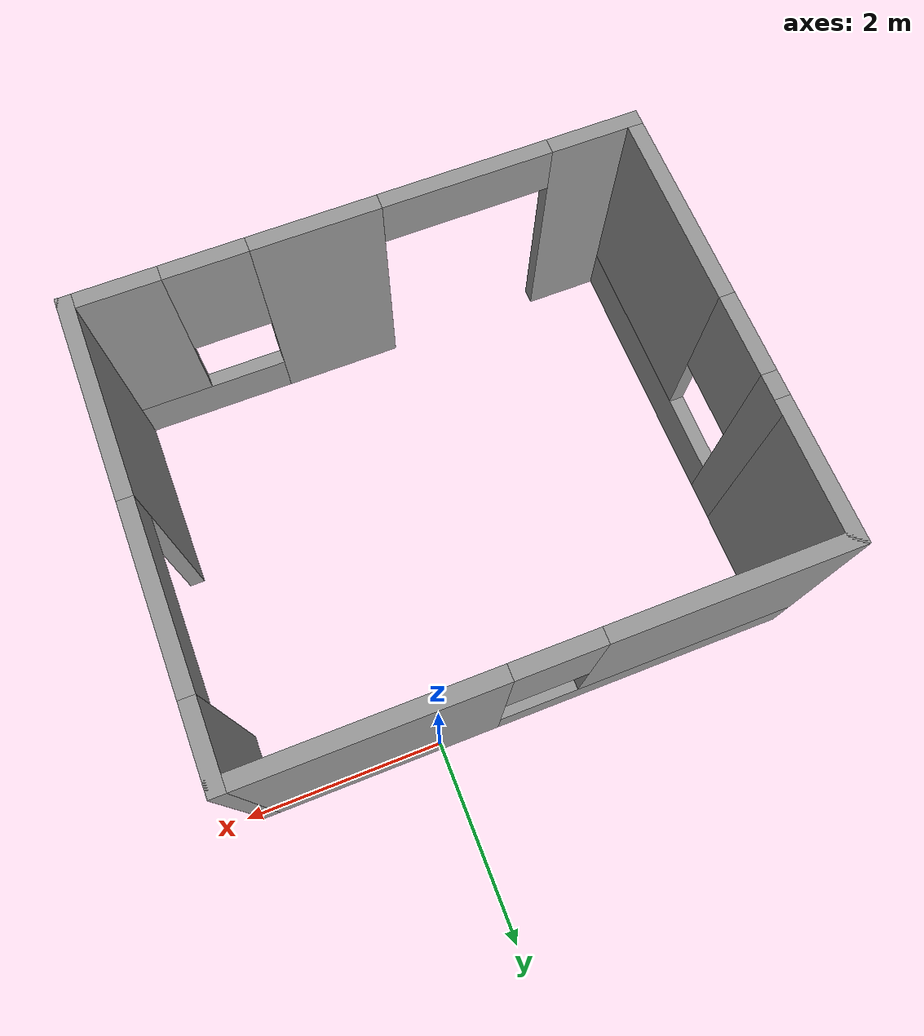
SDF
<?xml version='1.0'?>
<sdf version='1.6'>
  <model name='house2'>
    <pose frame=''>-0.915 -2.195 0 0 -0 0</pose>
    <link name='Wall_0'>
      <pose frame=''>-2.675 -0.625 0 0 -0 -1.5708</pose>
      <visual name='Wall_0_Visual_0'>
        <pose frame=''>-1.42678 0 1.25 0 -0 0</pose>
        <geometry>
          <box>
            <size>0.396432 0.15 2.5</size>
          </box>
        </geometry>
        <material>
          <script>
            <uri>file://media/materials/scripts/gazebo.material</uri>
            <name>Gazebo/Grey</name>
          </script>
          <ambient>1 1 1 1</ambient>
        </material>
        <meta>
          <layer>0</layer>
        </meta>
      </visual>
      <collision name='Wall_0_Collision_0'>
        <geometry>
          <box>
            <size>0.396432 0.15 2.5</size>
          </box>
        </geometry>
        <pose frame=''>-1.42678 0 1.25 0 -0 0</pose>
      </collision>
      <visual name='Wall_0_Visual_1'>
        <pose frame=''>0.198216 0 0.25 0 -0 0</pose>
        <geometry>
          <box>
            <size>2.85357 0.15 0.5</size>
          </box>
        </geometry>
        <material>
          <script>
            <uri>file://media/materials/scripts/gazebo.material</uri>
            <name>Gazebo/Grey</name>
          </script>
          <ambient>1 1 1 1</ambient>
        </material>
        <meta>
          <layer>0</layer>
        </meta>
      </visual>
      <collision name='Wall_0_Collision_1'>
        <geometry>
          <box>
            <size>2.85357 0.15 0.5</size>
          </box>
        </geometry>
        <pose frame=''>0.198216 0 0.25 0 -0 0</pose>
      </collision>
      <visual name='Wall_0_Visual_2'>
        <pose frame=''>0.598216 0 1.5 0 -0 0</pose>
        <geometry>
          <box>
            <size>2.05357 0.15 2</size>
          </box>
        </geometry>
        <material>
          <script>
            <uri>file://media/materials/scripts/gazebo.material</uri>
            <name>Gazebo/Grey</name>
          </script>
          <ambient>1 1 1 1</ambient>
        </material>
        <meta>
          <layer>0</layer>
        </meta>
      </visual>
      <collision name='Wall_0_Collision_2'>
        <geometry>
          <box>
            <size>2.05357 0.15 2</size>
          </box>
        </geometry>
        <pose frame=''>0.598216 0 1.5 0 -0 0</pose>
      </collision>
      <visual name='Wall_0_Visual_3'>
        <pose frame=''>-0.828568 0 1.9 0 -0 0</pose>
        <geometry>
          <box>
            <size>0.8 0.15 1.2</size>
          </box>
        </geometry>
        <material>
          <script>
            <uri>file://media/materials/scripts/gazebo.material</uri>
            <name>Gazebo/Grey</name>
          </script>
          <ambient>1 1 1 1</ambient>
        </material>
        <meta>
          <layer>0</layer>
        </meta>
      </visual>
      <collision name='Wall_0_Collision_3'>
        <geometry>
          <box>
            <size>0.8 0.15 1.2</size>
          </box>
        </geometry>
        <pose frame=''>-0.828568 0 1.9 0 -0 0</pose>
      </collision>
    </link>
    <link name='Wall_1'>
      <pose frame=''>-0 -2.175 0 0 -0 0</pose>
      <visual name='Wall_1_Visual_0'>
        <pose frame=''>-2.30064 0 1.25 0 -0 0</pose>
        <geometry>
          <box>
            <size>0.898712 0.15 2.5</size>
          </box>
        </geometry>
        <material>
          <script>
            <uri>file://media/materials/scripts/gazebo.material</uri>
            <name>Gazebo/Grey</name>
          </script>
          <ambient>1 1 1 1</ambient>
        </material>
        <meta>
          <layer>0</layer>
        </meta>
      </visual>
      <collision name='Wall_1_Collision_0'>
        <geometry>
          <box>
            <size>0.898712 0.15 2.5</size>
          </box>
        </geometry>
        <pose frame=''>-2.30064 0 1.25 0 -0 0</pose>
      </collision>
      <visual name='Wall_1_Visual_1'>
        <pose frame=''>0.412575 0 1.25 0 -0 0</pose>
        <geometry>
          <box>
            <size>1.23812 0.15 2.5</size>
          </box>
        </geometry>
        <material>
          <script>
            <uri>file://media/materials/scripts/gazebo.material</uri>
            <name>Gazebo/Grey</name>
          </script>
          <ambient>1 1 1 1</ambient>
        </material>
        <meta>
          <layer>0</layer>
        </meta>
      </visual>
      <collision name='Wall_1_Collision_1'>
        <geometry>
          <box>
            <size>1.23812 0.15 2.5</size>
          </box>
        </geometry>
        <pose frame=''>0.412575 0 1.25 0 -0 0</pose>
      </collision>
      <visual name='Wall_1_Visual_2'>
        <pose frame=''>1.89082 0 0.25 0 -0 0</pose>
        <geometry>
          <box>
            <size>1.71837 0.15 0.5</size>
          </box>
        </geometry>
        <material>
          <script>
            <uri>file://media/materials/scripts/gazebo.material</uri>
            <name>Gazebo/Grey</name>
          </script>
          <ambient>1 1 1 1</ambient>
        </material>
        <meta>
          <layer>0</layer>
        </meta>
      </visual>
      <collision name='Wall_1_Collision_2'>
        <geometry>
          <box>
            <size>1.71837 0.15 0.5</size>
          </box>
        </geometry>
        <pose frame=''>1.89082 0 0.25 0 -0 0</pose>
      </collision>
      <visual name='Wall_1_Visual_3'>
        <pose frame=''>2.29082 0 1.5 0 -0 0</pose>
        <geometry>
          <box>
            <size>0.918367 0.15 2</size>
          </box>
        </geometry>
        <material>
          <script>
            <uri>file://media/materials/scripts/gazebo.material</uri>
            <name>Gazebo/Grey</name>
          </script>
          <ambient>1 1 1 1</ambient>
        </material>
        <meta>
          <layer>0</layer>
        </meta>
      </visual>
      <collision name='Wall_1_Collision_3'>
        <geometry>
          <box>
            <size>0.918367 0.15 2</size>
          </box>
        </geometry>
        <pose frame=''>2.29082 0 1.5 0 -0 0</pose>
      </collision>
      <visual name='Wall_1_Visual_4'>
        <pose frame=''>1.43163 0 1.9 0 -0 0</pose>
        <geometry>
          <box>
            <size>0.8 0.15 1.2</size>
          </box>
        </geometry>
        <material>
          <script>
            <uri>file://media/materials/scripts/gazebo.material</uri>
            <name>Gazebo/Grey</name>
          </script>
          <ambient>1 1 1 1</ambient>
        </material>
        <meta>
          <layer>0</layer>
        </meta>
      </visual>
      <collision name='Wall_1_Collision_4'>
        <geometry>
          <box>
            <size>0.8 0.15 1.2</size>
          </box>
        </geometry>
        <pose frame=''>1.43163 0 1.9 0 -0 0</pose>
      </collision>
      <visual name='Wall_1_Visual_5'>
        <pose frame=''>-1.02889 0 2.25 0 -0 0</pose>
        <geometry>
          <box>
            <size>1.64481 0.15 0.5</size>
          </box>
        </geometry>
        <material>
          <script>
            <uri>file://media/materials/scripts/gazebo.material</uri>
            <name>Gazebo/Grey</name>
          </script>
          <ambient>1 1 1 1</ambient>
        </material>
        <meta>
          <layer>0</layer>
        </meta>
      </visual>
      <collision name='Wall_1_Collision_5'>
        <geometry>
          <box>
            <size>1.64481 0.15 0.5</size>
          </box>
        </geometry>
        <pose frame=''>-1.02889 0 2.25 0 -0 0</pose>
      </collision>
    </link>
    <link name='Wall_2'>
      <pose frame=''>2.675 0 0 0 -0 1.5708</pose>
      <visual name='Wall_2_Visual_0'>
        <pose frame=''>-1.25487 0 1.25 0 -0 0</pose>
        <geometry>
          <box>
            <size>1.99027 0.15 2.5</size>
          </box>
        </geometry>
        <material>
          <script>
            <uri>file://media/materials/scripts/gazebo.material</uri>
            <name>Gazebo/Grey</name>
          </script>
          <ambient>1 1 1 1</ambient>
        </material>
        <meta>
          <layer>0</layer>
        </meta>
      </visual>
      <collision name='Wall_2_Collision_0'>
        <geometry>
          <box>
            <size>1.99027 0.15 2.5</size>
          </box>
        </geometry>
        <pose frame=''>-1.25487 0 1.25 0 -0 0</pose>
      </collision>
      <visual name='Wall_2_Visual_1'>
        <pose frame=''>1.85744 0 1.25 0 -0 0</pose>
        <geometry>
          <box>
            <size>0.785126 0.15 2.5</size>
          </box>
        </geometry>
        <material>
          <script>
            <uri>file://media/materials/scripts/gazebo.material</uri>
            <name>Gazebo/Grey</name>
          </script>
          <ambient>1 1 1 1</ambient>
        </material>
        <meta>
          <layer>0</layer>
        </meta>
      </visual>
      <collision name='Wall_2_Collision_1'>
        <geometry>
          <box>
            <size>0.785126 0.15 2.5</size>
          </box>
        </geometry>
        <pose frame=''>1.85744 0 1.25 0 -0 0</pose>
      </collision>
      <visual name='Wall_2_Visual_2'>
        <pose frame=''>0.602571 0 2.25 0 -0 0</pose>
        <geometry>
          <box>
            <size>1.72461 0.15 0.5</size>
          </box>
        </geometry>
        <material>
          <script>
            <uri>file://media/materials/scripts/gazebo.material</uri>
            <name>Gazebo/Grey</name>
          </script>
          <ambient>1 1 1 1</ambient>
        </material>
        <meta>
          <layer>0</layer>
        </meta>
      </visual>
      <collision name='Wall_2_Collision_2'>
        <geometry>
          <box>
            <size>1.72461 0.15 0.5</size>
          </box>
        </geometry>
        <pose frame=''>0.602571 0 2.25 0 -0 0</pose>
      </collision>
    </link>
    <link name='Wall_3'>
      <pose frame=''>-0 2.175 0 0 -0 3.14159</pose>
      <visual name='Wall_3_Visual_0'>
        <pose frame=''>-1.53271 0 1.25 0 -0 0</pose>
        <geometry>
          <box>
            <size>2.43458 0.15 2.5</size>
          </box>
        </geometry>
        <material>
          <script>
            <uri>file://media/materials/scripts/gazebo.material</uri>
            <name>Gazebo/Grey</name>
          </script>
          <ambient>1 1 1 1</ambient>
        </material>
        <meta>
          <layer>0</layer>
        </meta>
      </visual>
      <collision name='Wall_3_Collision_0'>
        <geometry>
          <box>
            <size>2.43458 0.15 2.5</size>
          </box>
        </geometry>
        <pose frame=''>-1.53271 0 1.25 0 -0 0</pose>
      </collision>
      <visual name='Wall_3_Visual_1'>
        <pose frame=''>1.21729 0 0.25 0 -0 0</pose>
        <geometry>
          <box>
            <size>3.06542 0.15 0.5</size>
          </box>
        </geometry>
        <material>
          <script>
            <uri>file://media/materials/scripts/gazebo.material</uri>
            <name>Gazebo/Grey</name>
          </script>
          <ambient>1 1 1 1</ambient>
        </material>
        <meta>
          <layer>0</layer>
        </meta>
      </visual>
      <collision name='Wall_3_Collision_1'>
        <geometry>
          <box>
            <size>3.06542 0.15 0.5</size>
          </box>
        </geometry>
        <pose frame=''>1.21729 0 0.25 0 -0 0</pose>
      </collision>
      <visual name='Wall_3_Visual_2'>
        <pose frame=''>1.61729 0 1.5 0 -0 0</pose>
        <geometry>
          <box>
            <size>2.26542 0.15 2</size>
          </box>
        </geometry>
        <material>
          <script>
            <uri>file://media/materials/scripts/gazebo.material</uri>
            <name>Gazebo/Grey</name>
          </script>
          <ambient>1 1 1 1</ambient>
        </material>
        <meta>
          <layer>0</layer>
        </meta>
      </visual>
      <collision name='Wall_3_Collision_2'>
        <geometry>
          <box>
            <size>2.26542 0.15 2</size>
          </box>
        </geometry>
        <pose frame=''>1.61729 0 1.5 0 -0 0</pose>
      </collision>
      <visual name='Wall_3_Visual_3'>
        <pose frame=''>0.084579 0 1.9 0 -0 0</pose>
        <geometry>
          <box>
            <size>0.8 0.15 1.2</size>
          </box>
        </geometry>
        <material>
          <script>
            <uri>file://media/materials/scripts/gazebo.material</uri>
            <name>Gazebo/Grey</name>
          </script>
          <ambient>1 1 1 1</ambient>
        </material>
        <meta>
          <layer>0</layer>
        </meta>
      </visual>
      <collision name='Wall_3_Collision_3'>
        <geometry>
          <box>
            <size>0.8 0.15 1.2</size>
          </box>
        </geometry>
        <pose frame=''>0.084579 0 1.9 0 -0 0</pose>
      </collision>
    </link>
    <link name='Wall_4'>
      <collision name='Wall_4_Collision'>
        <geometry>
          <box>
            <size>1.4 0.15 2.5</size>
          </box>
        </geometry>
        <pose frame=''>0 0 1.25 0 -0 0</pose>
      </collision>
      <visual name='Wall_4_Visual'>
        <pose frame=''>0 0 1.25 0 -0 0</pose>
        <geometry>
          <box>
            <size>1.4 0.15 2.5</size>
          </box>
        </geometry>
        <material>
          <script>
            <uri>file://media/materials/scripts/gazebo.material</uri>
            <name>Gazebo/Grey</name>
          </script>
          <ambient>1 1 1 1</ambient>
        </material>
        <meta>
          <layer>0</layer>
        </meta>
      </visual>
      <pose frame=''>-2.675 1.55 0 0 -0 -1.5708</pose>
    </link>
    <static>1</static>
  </model>
</sdf>
